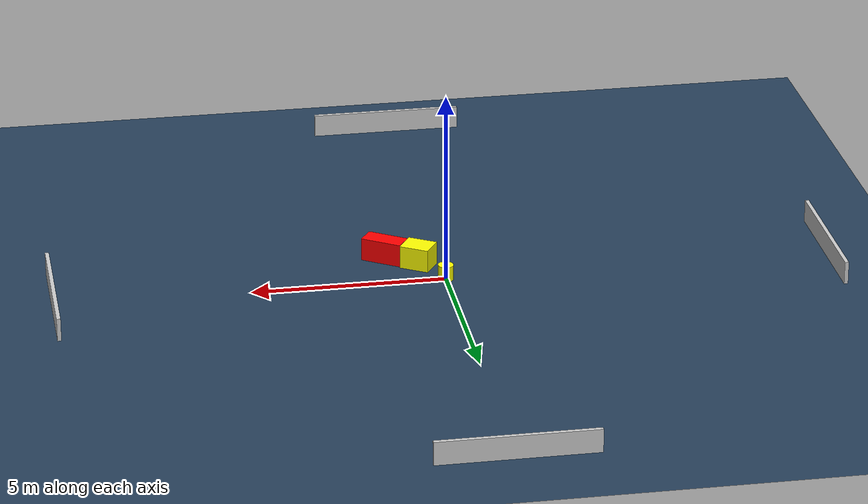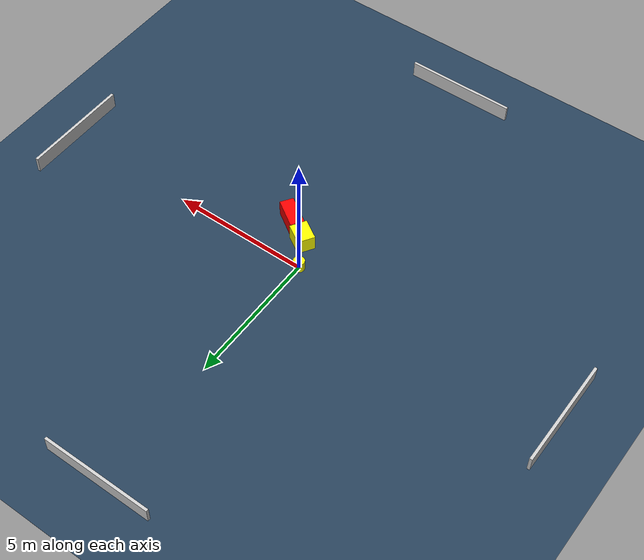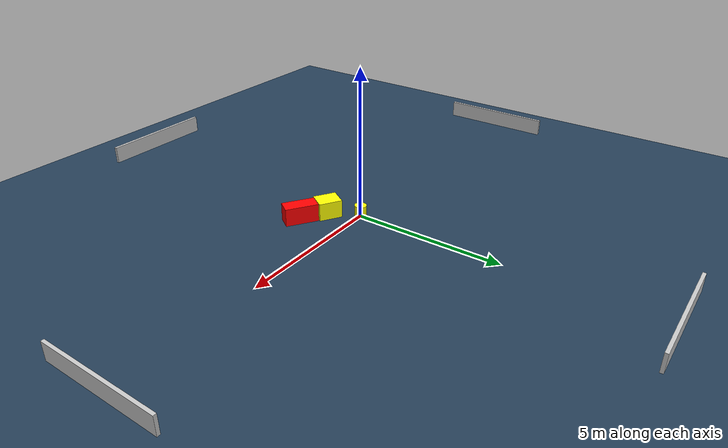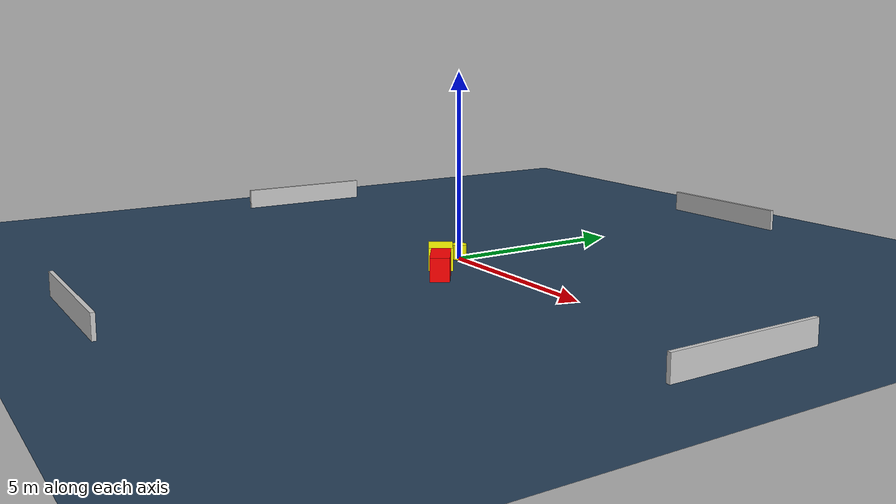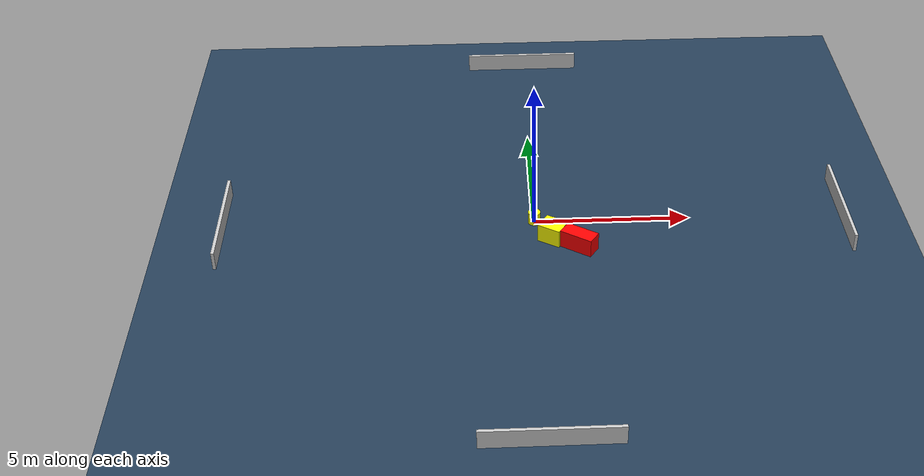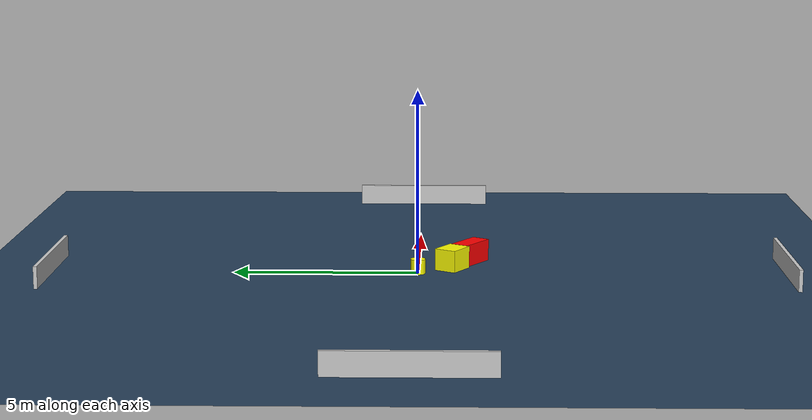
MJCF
<?xml version="1.0" ?>
<mujoco model="generated_environment">
  <option timestep="0.01" integrator="RK4" cone="elliptic"/>
  <default>
    <geom density="1"/>
  </default>
  <asset>
    <texture builtin="gradient" height="3072" name="skybox" rgb1="0.3 0.5 0.7" rgb2="0 0 0" type="skybox" width="512"/>
    <texture builtin="checker" height="300" name="groundplane" rgb1="0.2 0.3 0.4" rgb2="0.1 0.2 0.3" type="2d" width="300"/>
    <material name="groundplane" reflectance="0.2" texrepeat="5 5" texture="groundplane"/>
  </asset>
  <worldbody>
    <light dir="0 0 -1" directional="true" pos="0 0 1.5"/>
    <geom condim="3" friction="0.5 0.005 0.001" material="groundplane" name="floor" pos="0 0 0" size="0 0 0.05" type="plane"/>
    <body name="walls">
      <geom name="wall_1" condim="4" pos="-10.0 0.0 0.3" rgba="0.800000011920929 0.800000011920929 0.800000011920929 1.0" size="0.05 2.0 0.3" type="box"/>
      <geom name="wall_2" condim="4" pos="10.0 0.0 0.3" rgba="0.800000011920929 0.800000011920929 0.800000011920929 1.0" size="0.05 2.0 0.3" type="box"/>
      <geom name="wall_3" condim="4" pos="0.0 -10.0 0.3" rgba="0.800000011920929 0.800000011920929 0.800000011920929 1.0" size="2.0 0.05 0.3" type="box"/>
      <geom name="wall_4" condim="4" pos="0.0 10.0 0.3" rgba="0.800000011920929 0.800000011920929 0.800000011920929 1.0" size="2.0 0.05 0.3" type="box"/>
    </body>
    <body name="robot">
      <joint name="joint_x" type="slide" pos="0 0 0" axis="1 0 0"/>
      <joint name="joint_y" type="slide" pos="0 0 0" axis="0 1 0"/>
      <geom name="robot" type="cylinder" pos="0.0 0.0 0.2" size="0.2 0.2 0.0" mass="5.0" friction="1.0 0.005 0.0001" condim="4" rgba="1.0 1.0 0.0 1.0"/>
    </body>
    <body name="obstacle_1_movable">
      <geom name="obstacle_1_movable" condim="4" pos="0.5552532275327517 -0.9287796983529593 0.3" euler="0 0 328.15913493914223" friction="0.0 0.005 0.001" rgba="1.0 1.0 0.0 1.0" size="0.3859742937018087 0.3146588929224341 0.3" type="box" mass="0.1"/>
      <joint type="free"/>
    </body>
    <body name="obstacle_2_static">
      <geom name="obstacle_2_static" condim="4" pos="1.3576327053789652 -1.427900878410789 0.3" euler="0 0 146.37176113069813" friction="0.0 0.005 0.001" rgba="1.0 0.0 0.0 1.0" size="0.5472784657166556 0.25199569469470673 0.3" type="box"/>
    </body>
  </worldbody>
  <actuator>
    <motor name="actuator_x" joint="joint_x" gear="1" ctrlrange="-1 1"/>
    <motor name="actuator_y" joint="joint_y" gear="1" ctrlrange="-1 1"/>
  </actuator>
</mujoco>
